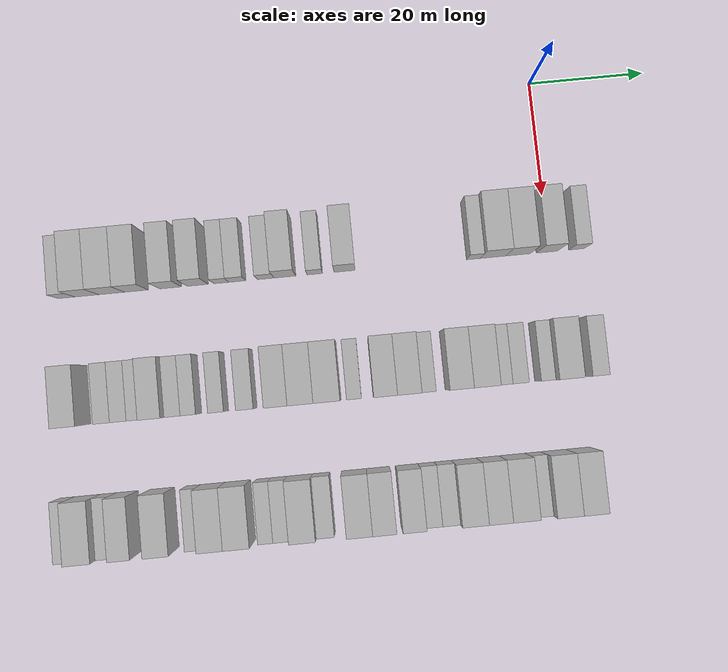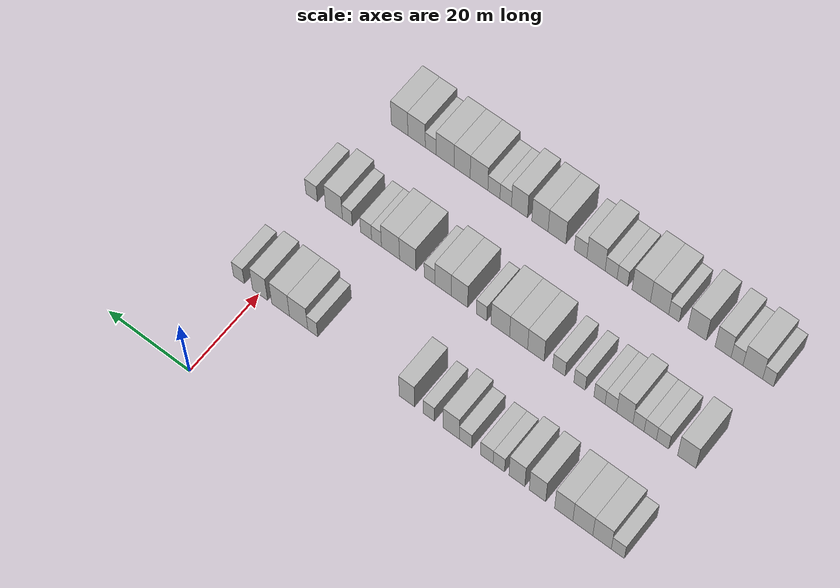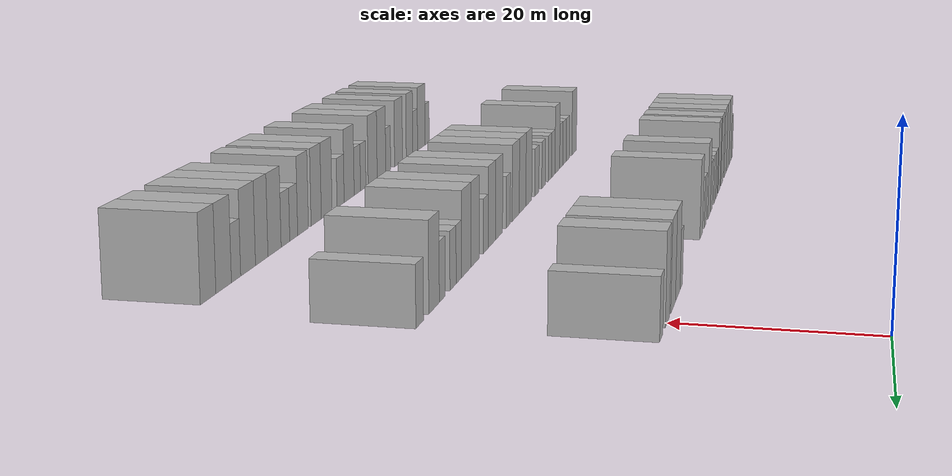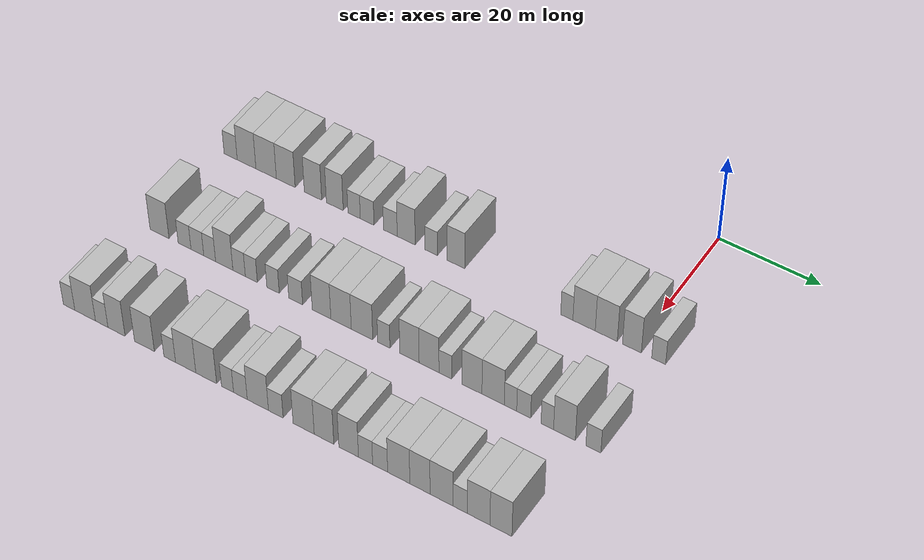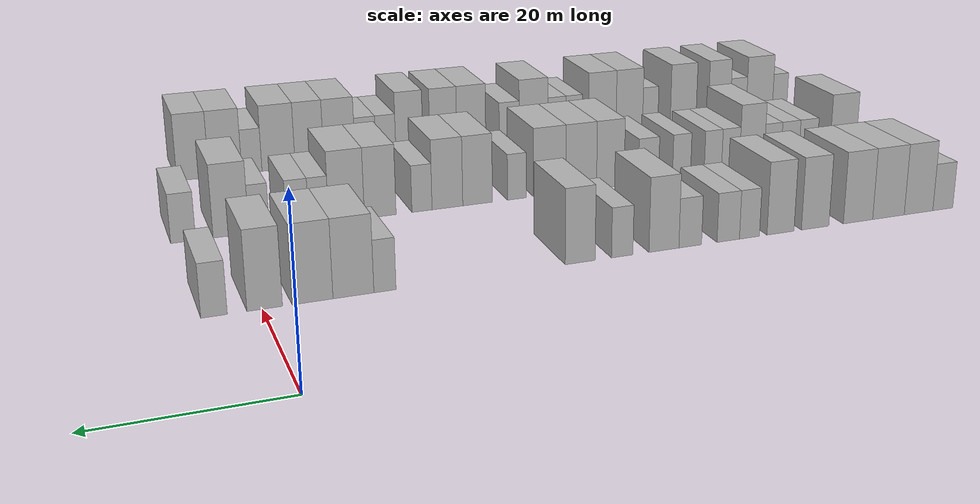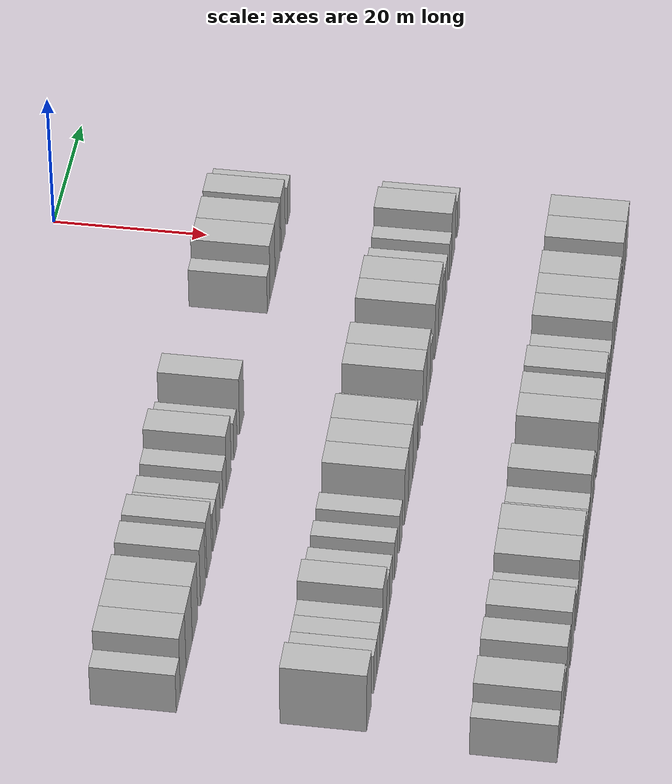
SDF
<sdf version="1.6">
 <world name="default">
  <model name="building_41">
   <static>1</static>
   <pose>25.0000 -83.7036 0 0.000000 0.000000 0.000000</pose>
   <link name="link">
    <pose>0 0 3.00 0 0 0</pose>
    <collision name="collision"><geometry><box><size>10.0000 2.9104 6.0000</size></box></geometry></collision>
    <visual name="visual">
     <cast_shadows>0</cast_shadows>
     <geometry><box><size>10.0000 2.9104 6.0000</size></box></geometry>
     <material>
      <script>
       <uri>model://HANNAS_wall/materials/scripts</uri>
       <uri>model://HANNAS_wall/materials/textures</uri>
       <name>vrc/HANNAS_wall</name>
      </script>
     </material>
    </visual>
   </link>
  </model>
  <model name="building_42">
   <static>1</static>
   <pose>25.0000 -80.1847 0 0.000000 0.000000 0.000000</pose>
   <link name="link">
    <pose>0 0 4.50 0 0 0</pose>
    <collision name="collision"><geometry><box><size>10.0000 4.1275 9.0000</size></box></geometry></collision>
    <visual name="visual">
     <cast_shadows>0</cast_shadows>
     <geometry><box><size>10.0000 4.1275 9.0000</size></box></geometry>
     <material>
      <script>
       <uri>model://HANNAS_wall/materials/scripts</uri>
       <uri>model://HANNAS_wall/materials/textures</uri>
       <name>vrc/HANNAS_wall</name>
      </script>
     </material>
    </visual>
   </link>
  </model>
  <model name="building_43">
   <static>1</static>
   <pose>25.0000 -75.8789 0 0.000000 0.000000 0.000000</pose>
   <link name="link">
    <pose>0 0 4.50 0 0 0</pose>
    <collision name="collision"><geometry><box><size>10.0000 4.4840 9.0000</size></box></geometry></collision>
    <visual name="visual">
     <cast_shadows>0</cast_shadows>
     <geometry><box><size>10.0000 4.4840 9.0000</size></box></geometry>
     <material>
      <script>
       <uri>model://HANNAS_wall/materials/scripts</uri>
       <uri>model://HANNAS_wall/materials/textures</uri>
       <name>vrc/HANNAS_wall</name>
      </script>
     </material>
    </visual>
   </link>
  </model>
  <model name="building_44">
   <static>1</static>
   <pose>25.0000 -71.5884 0 0.000000 0.000000 0.000000</pose>
   <link name="link">
    <pose>0 0 4.50 0 0 0</pose>
    <collision name="collision"><geometry><box><size>10.0000 4.0970 9.0000</size></box></geometry></collision>
    <visual name="visual">
     <cast_shadows>0</cast_shadows>
     <geometry><box><size>10.0000 4.0970 9.0000</size></box></geometry>
     <material>
      <script>
       <uri>model://HANNAS_wall/materials/scripts</uri>
       <uri>model://HANNAS_wall/materials/textures</uri>
       <name>vrc/HANNAS_wall</name>
      </script>
     </material>
    </visual>
   </link>
  </model>
  <model name="building_45">
   <static>1</static>
   <pose>25.0000 -65.6640 0 0.000000 0.000000 0.000000</pose>
   <link name="link">
    <pose>0 0 4.50 0 0 0</pose>
    <collision name="collision"><geometry><box><size>10.0000 3.7519 9.0000</size></box></geometry></collision>
    <visual name="visual">
     <cast_shadows>0</cast_shadows>
     <geometry><box><size>10.0000 3.7519 9.0000</size></box></geometry>
     <material>
      <script>
       <uri>model://HANNAS_wall/materials/scripts</uri>
       <uri>model://HANNAS_wall/materials/textures</uri>
       <name>vrc/HANNAS_wall</name>
      </script>
     </material>
    </visual>
   </link>
  </model>
  <model name="building_46">
   <static>1</static>
   <pose>25.0000 -60.9775 0 0.000000 0.000000 0.000000</pose>
   <link name="link">
    <pose>0 0 4.50 0 0 0</pose>
    <collision name="collision"><geometry><box><size>10.0000 3.6210 9.0000</size></box></geometry></collision>
    <visual name="visual">
     <cast_shadows>0</cast_shadows>
     <geometry><box><size>10.0000 3.6210 9.0000</size></box></geometry>
     <material>
      <script>
       <uri>model://HANNAS_wall/materials/scripts</uri>
       <uri>model://HANNAS_wall/materials/textures</uri>
       <name>vrc/HANNAS_wall</name>
      </script>
     </material>
    </visual>
   </link>
  </model>
  <model name="building_47">
   <static>1</static>
   <pose>25.0000 -56.8513 0 0.000000 0.000000 0.000000</pose>
   <link name="link">
    <pose>0 0 3.00 0 0 0</pose>
    <collision name="collision"><geometry><box><size>10.0000 2.6314 6.0000</size></box></geometry></collision>
    <visual name="visual">
     <cast_shadows>0</cast_shadows>
     <geometry><box><size>10.0000 2.6314 6.0000</size></box></geometry>
     <material>
      <script>
       <uri>model://HANNAS_wall/materials/scripts</uri>
       <uri>model://HANNAS_wall/materials/textures</uri>
       <name>vrc/HANNAS_wall</name>
      </script>
     </material>
    </visual>
   </link>
  </model>
  <model name="building_48">
   <static>1</static>
   <pose>25.0000 -54.0766 0 0.000000 0.000000 0.000000</pose>
   <link name="link">
    <pose>0 0 3.00 0 0 0</pose>
    <collision name="collision"><geometry><box><size>10.0000 2.9181 6.0000</size></box></geometry></collision>
    <visual name="visual">
     <cast_shadows>0</cast_shadows>
     <geometry><box><size>10.0000 2.9181 6.0000</size></box></geometry>
     <material>
      <script>
       <uri>model://HANNAS_wall/materials/scripts</uri>
       <uri>model://HANNAS_wall/materials/textures</uri>
       <name>vrc/HANNAS_wall</name>
      </script>
     </material>
    </visual>
   </link>
  </model>
  <model name="building_49">
   <static>1</static>
   <pose>25.0000 -49.1719 0 0.000000 0.000000 0.000000</pose>
   <link name="link">
    <pose>0 0 3.00 0 0 0</pose>
    <collision name="collision"><geometry><box><size>10.0000 2.8913 6.0000</size></box></geometry></collision>
    <visual name="visual">
     <cast_shadows>0</cast_shadows>
     <geometry><box><size>10.0000 2.8913 6.0000</size></box></geometry>
     <material>
      <script>
       <uri>model://HANNAS_wall/materials/scripts</uri>
       <uri>model://HANNAS_wall/materials/textures</uri>
       <name>vrc/HANNAS_wall</name>
      </script>
     </material>
    </visual>
   </link>
  </model>
  <model name="building_50">
   <static>1</static>
   <pose>25.0000 -45.8430 0 0.000000 0.000000 0.000000</pose>
   <link name="link">
    <pose>0 0 4.50 0 0 0</pose>
    <collision name="collision"><geometry><box><size>10.0000 3.7664 9.0000</size></box></geometry></collision>
    <visual name="visual">
     <cast_shadows>0</cast_shadows>
     <geometry><box><size>10.0000 3.7664 9.0000</size></box></geometry>
     <material>
      <script>
       <uri>model://HANNAS_wall/materials/scripts</uri>
       <uri>model://HANNAS_wall/materials/textures</uri>
       <name>vrc/HANNAS_wall</name>
      </script>
     </material>
    </visual>
   </link>
  </model>
  <model name="building_51">
   <static>1</static>
   <pose>25.0000 -40.6395 0 0.000000 0.000000 0.000000</pose>
   <link name="link">
    <pose>0 0 3.00 0 0 0</pose>
    <collision name="collision"><geometry><box><size>10.0000 2.6405 6.0000</size></box></geometry></collision>
    <visual name="visual">
     <cast_shadows>0</cast_shadows>
     <geometry><box><size>10.0000 2.6405 6.0000</size></box></geometry>
     <material>
      <script>
       <uri>model://HANNAS_wall/materials/scripts</uri>
       <uri>model://HANNAS_wall/materials/textures</uri>
       <name>vrc/HANNAS_wall</name>
      </script>
     </material>
    </visual>
   </link>
  </model>
  <model name="building_52">
   <static>1</static>
   <pose>25.0000 -35.5148 0 0.000000 0.000000 0.000000</pose>
   <link name="link">
    <pose>0 0 4.50 0 0 0</pose>
    <collision name="collision"><geometry><box><size>10.0000 3.6089 9.0000</size></box></geometry></collision>
    <visual name="visual">
     <cast_shadows>0</cast_shadows>
     <geometry><box><size>10.0000 3.6089 9.0000</size></box></geometry>
     <material>
      <script>
       <uri>model://HANNAS_wall/materials/scripts</uri>
       <uri>model://HANNAS_wall/materials/textures</uri>
       <name>vrc/HANNAS_wall</name>
      </script>
     </material>
    </visual>
   </link>
  </model>
  <model name="building_53">
   <static>1</static>
   <pose>25.0000 -13.0715 0 0.000000 0.000000 0.000000</pose>
   <link name="link">
    <pose>0 0 3.00 0 0 0</pose>
    <collision name="collision"><geometry><box><size>10.0000 2.4259 6.0000</size></box></geometry></collision>
    <visual name="visual">
     <cast_shadows>0</cast_shadows>
     <geometry><box><size>10.0000 2.4259 6.0000</size></box></geometry>
     <material>
      <script>
       <uri>model://HANNAS_wall/materials/scripts</uri>
       <uri>model://HANNAS_wall/materials/textures</uri>
       <name>vrc/HANNAS_wall</name>
      </script>
     </material>
    </visual>
   </link>
  </model>
  <model name="building_54">
   <static>1</static>
   <pose>25.0000 -9.6508 0 0.000000 0.000000 0.000000</pose>
   <link name="link">
    <pose>0 0 4.50 0 0 0</pose>
    <collision name="collision"><geometry><box><size>10.0000 4.4154 9.0000</size></box></geometry></collision>
    <visual name="visual">
     <cast_shadows>0</cast_shadows>
     <geometry><box><size>10.0000 4.4154 9.0000</size></box></geometry>
     <material>
      <script>
       <uri>model://HANNAS_wall/materials/scripts</uri>
       <uri>model://HANNAS_wall/materials/textures</uri>
       <name>vrc/HANNAS_wall</name>
      </script>
     </material>
    </visual>
   </link>
  </model>
  <model name="building_55">
   <static>1</static>
   <pose>25.0000 -5.2784 0 0.000000 0.000000 0.000000</pose>
   <link name="link">
    <pose>0 0 4.50 0 0 0</pose>
    <collision name="collision"><geometry><box><size>10.0000 4.3294 9.0000</size></box></geometry></collision>
    <visual name="visual">
     <cast_shadows>0</cast_shadows>
     <geometry><box><size>10.0000 4.3294 9.0000</size></box></geometry>
     <material>
      <script>
       <uri>model://HANNAS_wall/materials/scripts</uri>
       <uri>model://HANNAS_wall/materials/textures</uri>
       <name>vrc/HANNAS_wall</name>
      </script>
     </material>
    </visual>
   </link>
  </model>
  <model name="building_56">
   <static>1</static>
   <pose>25.0000 -0.2715 0 0.000000 0.000000 0.000000</pose>
   <link name="link">
    <pose>0 0 4.50 0 0 0</pose>
    <collision name="collision"><geometry><box><size>10.0000 3.6845 9.0000</size></box></geometry></collision>
    <visual name="visual">
     <cast_shadows>0</cast_shadows>
     <geometry><box><size>10.0000 3.6845 9.0000</size></box></geometry>
     <material>
      <script>
       <uri>model://HANNAS_wall/materials/scripts</uri>
       <uri>model://HANNAS_wall/materials/textures</uri>
       <name>vrc/HANNAS_wall</name>
      </script>
     </material>
    </visual>
   </link>
  </model>
  <model name="building_57">
   <static>1</static>
   <pose>25.0000 4.9167 0 0.000000 0.000000 0.000000</pose>
   <link name="link">
    <pose>0 0 3.00 0 0 0</pose>
    <collision name="collision"><geometry><box><size>10.0000 2.6919 6.0000</size></box></geometry></collision>
    <visual name="visual">
     <cast_shadows>0</cast_shadows>
     <geometry><box><size>10.0000 2.6919 6.0000</size></box></geometry>
     <material>
      <script>
       <uri>model://HANNAS_wall/materials/scripts</uri>
       <uri>model://HANNAS_wall/materials/textures</uri>
       <name>vrc/HANNAS_wall</name>
      </script>
     </material>
    </visual>
   </link>
  </model>
  <model name="building_163">
   <static>1</static>
   <pose>47.0000 -83.1682 0 0.000000 0.000000 0.000000</pose>
   <link name="link">
    <pose>0 0 4.50 0 0 0</pose>
    <collision name="collision"><geometry><box><size>10.0000 4.1408 9.0000</size></box></geometry></collision>
    <visual name="visual">
     <cast_shadows>0</cast_shadows>
     <geometry><box><size>10.0000 4.1408 9.0000</size></box></geometry>
     <material>
      <script>
       <uri>model://HANNAS_wall/materials/scripts</uri>
       <uri>model://HANNAS_wall/materials/textures</uri>
       <name>vrc/HANNAS_wall</name>
      </script>
     </material>
    </visual>
   </link>
  </model>
  <model name="building_164">
   <static>1</static>
   <pose>47.0000 -77.7043 0 0.000000 0.000000 0.000000</pose>
   <link name="link">
    <pose>0 0 3.00 0 0 0</pose>
    <collision name="collision"><geometry><box><size>10.0000 2.7871 6.0000</size></box></geometry></collision>
    <visual name="visual">
     <cast_shadows>0</cast_shadows>
     <geometry><box><size>10.0000 2.7871 6.0000</size></box></geometry>
     <material>
      <script>
       <uri>model://HANNAS_wall/materials/scripts</uri>
       <uri>model://HANNAS_wall/materials/textures</uri>
       <name>vrc/HANNAS_wall</name>
      </script>
     </material>
    </visual>
   </link>
  </model>
  <model name="building_165">
   <static>1</static>
   <pose>47.0000 -74.9298 0 0.000000 0.000000 0.000000</pose>
   <link name="link">
    <pose>0 0 3.00 0 0 0</pose>
    <collision name="collision"><geometry><box><size>10.0000 2.7617 6.0000</size></box></geometry></collision>
    <visual name="visual">
     <cast_shadows>0</cast_shadows>
     <geometry><box><size>10.0000 2.7617 6.0000</size></box></geometry>
     <material>
      <script>
       <uri>model://HANNAS_wall/materials/scripts</uri>
       <uri>model://HANNAS_wall/materials/textures</uri>
       <name>vrc/HANNAS_wall</name>
      </script>
     </material>
    </visual>
   </link>
  </model>
  <model name="building_166">
   <static>1</static>
   <pose>47.0000 -72.2760 0 0.000000 0.000000 0.000000</pose>
   <link name="link">
    <pose>0 0 3.00 0 0 0</pose>
    <collision name="collision"><geometry><box><size>10.0000 2.5460 6.0000</size></box></geometry></collision>
    <visual name="visual">
     <cast_shadows>0</cast_shadows>
     <geometry><box><size>10.0000 2.5460 6.0000</size></box></geometry>
     <material>
      <script>
       <uri>model://HANNAS_wall/materials/scripts</uri>
       <uri>model://HANNAS_wall/materials/textures</uri>
       <name>vrc/HANNAS_wall</name>
      </script>
     </material>
    </visual>
   </link>
  </model>
  <model name="building_167">
   <static>1</static>
   <pose>47.0000 -69.1542 0 0.000000 0.000000 0.000000</pose>
   <link name="link">
    <pose>0 0 4.50 0 0 0</pose>
    <collision name="collision"><geometry><box><size>10.0000 3.6977 9.0000</size></box></geometry></collision>
    <visual name="visual">
     <cast_shadows>0</cast_shadows>
     <geometry><box><size>10.0000 3.6977 9.0000</size></box></geometry>
     <material>
      <script>
       <uri>model://HANNAS_wall/materials/scripts</uri>
       <uri>model://HANNAS_wall/materials/textures</uri>
       <name>vrc/HANNAS_wall</name>
      </script>
     </material>
    </visual>
   </link>
  </model>
  <model name="building_168">
   <static>1</static>
   <pose>47.0000 -65.9804 0 0.000000 0.000000 0.000000</pose>
   <link name="link">
    <pose>0 0 3.00 0 0 0</pose>
    <collision name="collision"><geometry><box><size>10.0000 2.6498 6.0000</size></box></geometry></collision>
    <visual name="visual">
     <cast_shadows>0</cast_shadows>
     <geometry><box><size>10.0000 2.6498 6.0000</size></box></geometry>
     <material>
      <script>
       <uri>model://HANNAS_wall/materials/scripts</uri>
       <uri>model://HANNAS_wall/materials/textures</uri>
       <name>vrc/HANNAS_wall</name>
      </script>
     </material>
    </visual>
   </link>
  </model>
  <model name="building_169">
   <static>1</static>
   <pose>47.0000 -63.3798 0 0.000000 0.000000 0.000000</pose>
   <link name="link">
    <pose>0 0 3.00 0 0 0</pose>
    <collision name="collision"><geometry><box><size>10.0000 2.5513 6.0000</size></box></geometry></collision>
    <visual name="visual">
     <cast_shadows>0</cast_shadows>
     <geometry><box><size>10.0000 2.5513 6.0000</size></box></geometry>
     <material>
      <script>
       <uri>model://HANNAS_wall/materials/scripts</uri>
       <uri>model://HANNAS_wall/materials/textures</uri>
       <name>vrc/HANNAS_wall</name>
      </script>
     </material>
    </visual>
   </link>
  </model>
  <model name="building_170">
   <static>1</static>
   <pose>47.0000 -58.7973 0 0.000000 0.000000 0.000000</pose>
   <link name="link">
    <pose>0 0 3.00 0 0 0</pose>
    <collision name="collision"><geometry><box><size>10.0000 2.6137 6.0000</size></box></geometry></collision>
    <visual name="visual">
     <cast_shadows>0</cast_shadows>
     <geometry><box><size>10.0000 2.6137 6.0000</size></box></geometry>
     <material>
      <script>
       <uri>model://HANNAS_wall/materials/scripts</uri>
       <uri>model://HANNAS_wall/materials/textures</uri>
       <name>vrc/HANNAS_wall</name>
      </script>
     </material>
    </visual>
   </link>
  </model>
  <model name="building_171">
   <static>1</static>
   <pose>47.0000 -54.0409 0 0.000000 0.000000 0.000000</pose>
   <link name="link">
    <pose>0 0 3.00 0 0 0</pose>
    <collision name="collision"><geometry><box><size>10.0000 2.8991 6.0000</size></box></geometry></collision>
    <visual name="visual">
     <cast_shadows>0</cast_shadows>
     <geometry><box><size>10.0000 2.8991 6.0000</size></box></geometry>
     <material>
      <script>
       <uri>model://HANNAS_wall/materials/scripts</uri>
       <uri>model://HANNAS_wall/materials/textures</uri>
       <name>vrc/HANNAS_wall</name>
      </script>
     </material>
    </visual>
   </link>
  </model>
  <model name="building_172">
   <static>1</static>
   <pose>47.0000 -48.6638 0 0.000000 0.000000 0.000000</pose>
   <link name="link">
    <pose>0 0 4.50 0 0 0</pose>
    <collision name="collision"><geometry><box><size>10.0000 3.8551 9.0000</size></box></geometry></collision>
    <visual name="visual">
     <cast_shadows>0</cast_shadows>
     <geometry><box><size>10.0000 3.8551 9.0000</size></box></geometry>
     <material>
      <script>
       <uri>model://HANNAS_wall/materials/scripts</uri>
       <uri>model://HANNAS_wall/materials/textures</uri>
       <name>vrc/HANNAS_wall</name>
      </script>
     </material>
    </visual>
   </link>
  </model>
  <model name="building_173">
   <static>1</static>
   <pose>47.0000 -44.6332 0 0.000000 0.000000 0.000000</pose>
   <link name="link">
    <pose>0 0 4.50 0 0 0</pose>
    <collision name="collision"><geometry><box><size>10.0000 4.2063 9.0000</size></box></geometry></collision>
    <visual name="visual">
     <cast_shadows>0</cast_shadows>
     <geometry><box><size>10.0000 4.2063 9.0000</size></box></geometry>
     <material>
      <script>
       <uri>model://HANNAS_wall/materials/scripts</uri>
       <uri>model://HANNAS_wall/materials/textures</uri>
       <name>vrc/HANNAS_wall</name>
      </script>
     </material>
    </visual>
   </link>
  </model>
  <model name="building_174">
   <static>1</static>
   <pose>47.0000 -40.3350 0 0.000000 0.000000 0.000000</pose>
   <link name="link">
    <pose>0 0 4.50 0 0 0</pose>
    <collision name="collision"><geometry><box><size>10.0000 4.3901 9.0000</size></box></geometry></collision>
    <visual name="visual">
     <cast_shadows>0</cast_shadows>
     <geometry><box><size>10.0000 4.3901 9.0000</size></box></geometry>
     <material>
      <script>
       <uri>model://HANNAS_wall/materials/scripts</uri>
       <uri>model://HANNAS_wall/materials/textures</uri>
       <name>vrc/HANNAS_wall</name>
      </script>
     </material>
    </visual>
   </link>
  </model>
  <model name="building_175">
   <static>1</static>
   <pose>47.0000 -35.9000 0 0.000000 0.000000 0.000000</pose>
   <link name="link">
    <pose>0 0 3.00 0 0 0</pose>
    <collision name="collision"><geometry><box><size>10.0000 2.4799 6.0000</size></box></geometry></collision>
    <visual name="visual">
     <cast_shadows>0</cast_shadows>
     <geometry><box><size>10.0000 2.4799 6.0000</size></box></geometry>
     <material>
      <script>
       <uri>model://HANNAS_wall/materials/scripts</uri>
       <uri>model://HANNAS_wall/materials/textures</uri>
       <name>vrc/HANNAS_wall</name>
      </script>
     </material>
    </visual>
   </link>
  </model>
  <model name="building_176">
   <static>1</static>
   <pose>47.0000 -30.7206 0 0.000000 0.000000 0.000000</pose>
   <link name="link">
    <pose>0 0 4.50 0 0 0</pose>
    <collision name="collision"><geometry><box><size>10.0000 3.8787 9.0000</size></box></geometry></collision>
    <visual name="visual">
     <cast_shadows>0</cast_shadows>
     <geometry><box><size>10.0000 3.8787 9.0000</size></box></geometry>
     <material>
      <script>
       <uri>model://HANNAS_wall/materials/scripts</uri>
       <uri>model://HANNAS_wall/materials/textures</uri>
       <name>vrc/HANNAS_wall</name>
      </script>
     </material>
    </visual>
   </link>
  </model>
  <model name="building_177">
   <static>1</static>
   <pose>47.0000 -26.7974 0 0.000000 0.000000 0.000000</pose>
   <link name="link">
    <pose>0 0 4.50 0 0 0</pose>
    <collision name="collision"><geometry><box><size>10.0000 3.9677 9.0000</size></box></geometry></collision>
    <visual name="visual">
     <cast_shadows>0</cast_shadows>
     <geometry><box><size>10.0000 3.9677 9.0000</size></box></geometry>
     <material>
      <script>
       <uri>model://HANNAS_wall/materials/scripts</uri>
       <uri>model://HANNAS_wall/materials/textures</uri>
       <name>vrc/HANNAS_wall</name>
      </script>
     </material>
    </visual>
   </link>
  </model>
  <model name="building_178">
   <static>1</static>
   <pose>47.0000 -23.5356 0 0.000000 0.000000 0.000000</pose>
   <link name="link">
    <pose>0 0 3.00 0 0 0</pose>
    <collision name="collision"><geometry><box><size>10.0000 2.5561 6.0000</size></box></geometry></collision>
    <visual name="visual">
     <cast_shadows>0</cast_shadows>
     <geometry><box><size>10.0000 2.5561 6.0000</size></box></geometry>
     <material>
      <script>
       <uri>model://HANNAS_wall/materials/scripts</uri>
       <uri>model://HANNAS_wall/materials/textures</uri>
       <name>vrc/HANNAS_wall</name>
      </script>
     </material>
    </visual>
   </link>
  </model>
  <model name="building_179">
   <static>1</static>
   <pose>47.0000 -18.2836 0 0.000000 0.000000 0.000000</pose>
   <link name="link">
    <pose>0 0 4.50 0 0 0</pose>
    <collision name="collision"><geometry><box><size>10.0000 3.9479 9.0000</size></box></geometry></collision>
    <visual name="visual">
     <cast_shadows>0</cast_shadows>
     <geometry><box><size>10.0000 3.9479 9.0000</size></box></geometry>
     <material>
      <script>
       <uri>model://HANNAS_wall/materials/scripts</uri>
       <uri>model://HANNAS_wall/materials/textures</uri>
       <name>vrc/HANNAS_wall</name>
      </script>
     </material>
    </visual>
   </link>
  </model>
  <model name="building_180">
   <static>1</static>
   <pose>47.0000 -14.1208 0 0.000000 0.000000 0.000000</pose>
   <link name="link">
    <pose>0 0 4.50 0 0 0</pose>
    <collision name="collision"><geometry><box><size>10.0000 4.3777 9.0000</size></box></geometry></collision>
    <visual name="visual">
     <cast_shadows>0</cast_shadows>
     <geometry><box><size>10.0000 4.3777 9.0000</size></box></geometry>
     <material>
      <script>
       <uri>model://HANNAS_wall/materials/scripts</uri>
       <uri>model://HANNAS_wall/materials/textures</uri>
       <name>vrc/HANNAS_wall</name>
      </script>
     </material>
    </visual>
   </link>
  </model>
  <model name="building_181">
   <static>1</static>
   <pose>47.0000 -10.7243 0 0.000000 0.000000 0.000000</pose>
   <link name="link">
    <pose>0 0 3.00 0 0 0</pose>
    <collision name="collision"><geometry><box><size>10.0000 2.4152 6.0000</size></box></geometry></collision>
    <visual name="visual">
     <cast_shadows>0</cast_shadows>
     <geometry><box><size>10.0000 2.4152 6.0000</size></box></geometry>
     <material>
      <script>
       <uri>model://HANNAS_wall/materials/scripts</uri>
       <uri>model://HANNAS_wall/materials/textures</uri>
       <name>vrc/HANNAS_wall</name>
      </script>
     </material>
    </visual>
   </link>
  </model>
  <model name="building_182">
   <static>1</static>
   <pose>47.0000 -8.1660 0 0.000000 0.000000 0.000000</pose>
   <link name="link">
    <pose>0 0 3.00 0 0 0</pose>
    <collision name="collision"><geometry><box><size>10.0000 2.7015 6.0000</size></box></geometry></collision>
    <visual name="visual">
     <cast_shadows>0</cast_shadows>
     <geometry><box><size>10.0000 2.7015 6.0000</size></box></geometry>
     <material>
      <script>
       <uri>model://HANNAS_wall/materials/scripts</uri>
       <uri>model://HANNAS_wall/materials/textures</uri>
       <name>vrc/HANNAS_wall</name>
      </script>
     </material>
    </visual>
   </link>
  </model>
  <model name="building_183">
   <static>1</static>
   <pose>47.0000 -3.6055 0 0.000000 0.000000 0.000000</pose>
   <link name="link">
    <pose>0 0 3.00 0 0 0</pose>
    <collision name="collision"><geometry><box><size>10.0000 2.4195 6.0000</size></box></geometry></collision>
    <visual name="visual">
     <cast_shadows>0</cast_shadows>
     <geometry><box><size>10.0000 2.4195 6.0000</size></box></geometry>
     <material>
      <script>
       <uri>model://HANNAS_wall/materials/scripts</uri>
       <uri>model://HANNAS_wall/materials/textures</uri>
       <name>vrc/HANNAS_wall</name>
      </script>
     </material>
    </visual>
   </link>
  </model>
  <model name="building_184">
   <static>1</static>
   <pose>47.0000 -0.3115 0 0.000000 0.000000 0.000000</pose>
   <link name="link">
    <pose>0 0 4.50 0 0 0</pose>
    <collision name="collision"><geometry><box><size>10.0000 4.1685 9.0000</size></box></geometry></collision>
    <visual name="visual">
     <cast_shadows>0</cast_shadows>
     <geometry><box><size>10.0000 4.1685 9.0000</size></box></geometry>
     <material>
      <script>
       <uri>model://HANNAS_wall/materials/scripts</uri>
       <uri>model://HANNAS_wall/materials/textures</uri>
       <name>vrc/HANNAS_wall</name>
      </script>
     </material>
    </visual>
   </link>
  </model>
  <model name="building_185">
   <static>1</static>
   <pose>47.0000 5.1976 0 0.000000 0.000000 0.000000</pose>
   <link name="link">
    <pose>0 0 3.00 0 0 0</pose>
    <collision name="collision"><geometry><box><size>10.0000 2.8498 6.0000</size></box></geometry></collision>
    <visual name="visual">
     <cast_shadows>0</cast_shadows>
     <geometry><box><size>10.0000 2.8498 6.0000</size></box></geometry>
     <material>
      <script>
       <uri>model://HANNAS_wall/materials/scripts</uri>
       <uri>model://HANNAS_wall/materials/textures</uri>
       <name>vrc/HANNAS_wall</name>
      </script>
     </material>
    </visual>
   </link>
  </model>
  <model name="building_292">
   <static>1</static>
   <pose>69.0000 -85.9227 0 0.000000 0.000000 0.000000</pose>
   <link name="link">
    <pose>0 0 3.00 0 0 0</pose>
    <collision name="collision"><geometry><box><size>10.0000 2.4781 6.0000</size></box></geometry></collision>
    <visual name="visual">
     <cast_shadows>0</cast_shadows>
     <geometry><box><size>10.0000 2.4781 6.0000</size></box></geometry>
     <material>
      <script>
       <uri>model://HANNAS_wall/materials/scripts</uri>
       <uri>model://HANNAS_wall/materials/textures</uri>
       <name>vrc/HANNAS_wall</name>
      </script>
     </material>
    </visual>
   </link>
  </model>
  <model name="building_293">
   <static>1</static>
   <pose>69.0000 -82.4627 0 0.000000 0.000000 0.000000</pose>
   <link name="link">
    <pose>0 0 4.50 0 0 0</pose>
    <collision name="collision"><geometry><box><size>10.0000 4.4420 9.0000</size></box></geometry></collision>
    <visual name="visual">
     <cast_shadows>0</cast_shadows>
     <geometry><box><size>10.0000 4.4420 9.0000</size></box></geometry>
     <material>
      <script>
       <uri>model://HANNAS_wall/materials/scripts</uri>
       <uri>model://HANNAS_wall/materials/textures</uri>
       <name>vrc/HANNAS_wall</name>
      </script>
     </material>
    </visual>
   </link>
  </model>
  <model name="building_294">
   <static>1</static>
   <pose>69.0000 -78.8973 0 0.000000 0.000000 0.000000</pose>
   <link name="link">
    <pose>0 0 3.00 0 0 0</pose>
    <collision name="collision"><geometry><box><size>10.0000 2.6887 6.0000</size></box></geometry></collision>
    <visual name="visual">
     <cast_shadows>0</cast_shadows>
     <geometry><box><size>10.0000 2.6887 6.0000</size></box></geometry>
     <material>
      <script>
       <uri>model://HANNAS_wall/materials/scripts</uri>
       <uri>model://HANNAS_wall/materials/textures</uri>
       <name>vrc/HANNAS_wall</name>
      </script>
     </material>
    </visual>
   </link>
  </model>
  <model name="building_295">
   <static>1</static>
   <pose>69.0000 -75.7292 0 0.000000 0.000000 0.000000</pose>
   <link name="link">
    <pose>0 0 4.50 0 0 0</pose>
    <collision name="collision"><geometry><box><size>10.0000 3.6476 9.0000</size></box></geometry></collision>
    <visual name="visual">
     <cast_shadows>0</cast_shadows>
     <geometry><box><size>10.0000 3.6476 9.0000</size></box></geometry>
     <material>
      <script>
       <uri>model://HANNAS_wall/materials/scripts</uri>
       <uri>model://HANNAS_wall/materials/textures</uri>
       <name>vrc/HANNAS_wall</name>
      </script>
     </material>
    </visual>
   </link>
  </model>
  <model name="building_296">
   <static>1</static>
   <pose>69.0000 -69.8061 0 0.000000 0.000000 0.000000</pose>
   <link name="link">
    <pose>0 0 4.50 0 0 0</pose>
    <collision name="collision"><geometry><box><size>10.0000 4.1986 9.0000</size></box></geometry></collision>
    <visual name="visual">
     <cast_shadows>0</cast_shadows>
     <geometry><box><size>10.0000 4.1986 9.0000</size></box></geometry>
     <material>
      <script>
       <uri>model://HANNAS_wall/materials/scripts</uri>
       <uri>model://HANNAS_wall/materials/textures</uri>
       <name>vrc/HANNAS_wall</name>
      </script>
     </material>
    </visual>
   </link>
  </model>
  <model name="building_297">
   <static>1</static>
   <pose>69.0000 -64.4861 0 0.000000 0.000000 0.000000</pose>
   <link name="link">
    <pose>0 0 3.00 0 0 0</pose>
    <collision name="collision"><geometry><box><size>10.0000 2.4413 6.0000</size></box></geometry></collision>
    <visual name="visual">
     <cast_shadows>0</cast_shadows>
     <geometry><box><size>10.0000 2.4413 6.0000</size></box></geometry>
     <material>
      <script>
       <uri>model://HANNAS_wall/materials/scripts</uri>
       <uri>model://HANNAS_wall/materials/textures</uri>
       <name>vrc/HANNAS_wall</name>
      </script>
     </material>
    </visual>
   </link>
  </model>
  <model name="building_298">
   <static>1</static>
   <pose>69.0000 -61.1536 0 0.000000 0.000000 0.000000</pose>
   <link name="link">
    <pose>0 0 4.50 0 0 0</pose>
    <collision name="collision"><geometry><box><size>10.0000 4.2236 9.0000</size></box></geometry></collision>
    <visual name="visual">
     <cast_shadows>0</cast_shadows>
     <geometry><box><size>10.0000 4.2236 9.0000</size></box></geometry>
     <material>
      <script>
       <uri>model://HANNAS_wall/materials/scripts</uri>
       <uri>model://HANNAS_wall/materials/textures</uri>
       <name>vrc/HANNAS_wall</name>
      </script>
     </material>
    </visual>
   </link>
  </model>
  <model name="building_299">
   <static>1</static>
   <pose>69.0000 -56.8923 0 0.000000 0.000000 0.000000</pose>
   <link name="link">
    <pose>0 0 4.50 0 0 0</pose>
    <collision name="collision"><geometry><box><size>10.0000 4.2990 9.0000</size></box></geometry></collision>
    <visual name="visual">
     <cast_shadows>0</cast_shadows>
     <geometry><box><size>10.0000 4.2990 9.0000</size></box></geometry>
     <material>
      <script>
       <uri>model://HANNAS_wall/materials/scripts</uri>
       <uri>model://HANNAS_wall/materials/textures</uri>
       <name>vrc/HANNAS_wall</name>
      </script>
     </material>
    </visual>
   </link>
  </model>
  <model name="building_300">
   <static>1</static>
   <pose>69.0000 -52.5038 0 0.000000 0.000000 0.000000</pose>
   <link name="link">
    <pose>0 0 3.00 0 0 0</pose>
    <collision name="collision"><geometry><box><size>10.0000 2.4782 6.0000</size></box></geometry></collision>
    <visual name="visual">
     <cast_shadows>0</cast_shadows>
     <geometry><box><size>10.0000 2.4782 6.0000</size></box></geometry>
     <material>
      <script>
       <uri>model://HANNAS_wall/materials/scripts</uri>
       <uri>model://HANNAS_wall/materials/textures</uri>
       <name>vrc/HANNAS_wall</name>
      </script>
     </material>
    </visual>
   </link>
  </model>
  <model name="building_301">
   <static>1</static>
   <pose>69.0000 -49.8663 0 0.000000 0.000000 0.000000</pose>
   <link name="link">
    <pose>0 0 3.00 0 0 0</pose>
    <collision name="collision"><geometry><box><size>10.0000 2.7967 6.0000</size></box></geometry></collision>
    <visual name="visual">
     <cast_shadows>0</cast_shadows>
     <geometry><box><size>10.0000 2.7967 6.0000</size></box></geometry>
     <material>
      <script>
       <uri>model://HANNAS_wall/materials/scripts</uri>
       <uri>model://HANNAS_wall/materials/textures</uri>
       <name>vrc/HANNAS_wall</name>
      </script>
     </material>
    </visual>
   </link>
  </model>
  <model name="building_302">
   <static>1</static>
   <pose>69.0000 -46.3128 0 0.000000 0.000000 0.000000</pose>
   <link name="link">
    <pose>0 0 4.50 0 0 0</pose>
    <collision name="collision"><geometry><box><size>10.0000 4.3103 9.0000</size></box></geometry></collision>
    <visual name="visual">
     <cast_shadows>0</cast_shadows>
     <geometry><box><size>10.0000 4.3103 9.0000</size></box></geometry>
     <material>
      <script>
       <uri>model://HANNAS_wall/materials/scripts</uri>
       <uri>model://HANNAS_wall/materials/textures</uri>
       <name>vrc/HANNAS_wall</name>
      </script>
     </material>
    </visual>
   </link>
  </model>
  <model name="building_303">
   <static>1</static>
   <pose>69.0000 -42.6739 0 0.000000 0.000000 0.000000</pose>
   <link name="link">
    <pose>0 0 3.00 0 0 0</pose>
    <collision name="collision"><geometry><box><size>10.0000 2.9676 6.0000</size></box></geometry></collision>
    <visual name="visual">
     <cast_shadows>0</cast_shadows>
     <geometry><box><size>10.0000 2.9676 6.0000</size></box></geometry>
     <material>
      <script>
       <uri>model://HANNAS_wall/materials/scripts</uri>
       <uri>model://HANNAS_wall/materials/textures</uri>
       <name>vrc/HANNAS_wall</name>
      </script>
     </material>
    </visual>
   </link>
  </model>
  <model name="building_304">
   <static>1</static>
   <pose>69.0000 -37.0755 0 0.000000 0.000000 0.000000</pose>
   <link name="link">
    <pose>0 0 4.50 0 0 0</pose>
    <collision name="collision"><geometry><box><size>10.0000 4.2292 9.0000</size></box></geometry></collision>
    <visual name="visual">
     <cast_shadows>0</cast_shadows>
     <geometry><box><size>10.0000 4.2292 9.0000</size></box></geometry>
     <material>
      <script>
       <uri>model://HANNAS_wall/materials/scripts</uri>
       <uri>model://HANNAS_wall/materials/textures</uri>
       <name>vrc/HANNAS_wall</name>
      </script>
     </material>
    </visual>
   </link>
  </model>
  <model name="building_305">
   <static>1</static>
   <pose>69.0000 -33.0144 0 0.000000 0.000000 0.000000</pose>
   <link name="link">
    <pose>0 0 4.50 0 0 0</pose>
    <collision name="collision"><geometry><box><size>10.0000 3.8929 9.0000</size></box></geometry></collision>
    <visual name="visual">
     <cast_shadows>0</cast_shadows>
     <geometry><box><size>10.0000 3.8929 9.0000</size></box></geometry>
     <material>
      <script>
       <uri>model://HANNAS_wall/materials/scripts</uri>
       <uri>model://HANNAS_wall/materials/textures</uri>
       <name>vrc/HANNAS_wall</name>
      </script>
     </material>
    </visual>
   </link>
  </model>
  <model name="building_306">
   <static>1</static>
   <pose>69.0000 -28.1370 0 0.000000 0.000000 0.000000</pose>
   <link name="link">
    <pose>0 0 4.50 0 0 0</pose>
    <collision name="collision"><geometry><box><size>10.0000 3.8618 9.0000</size></box></geometry></collision>
    <visual name="visual">
     <cast_shadows>0</cast_shadows>
     <geometry><box><size>10.0000 3.8618 9.0000</size></box></geometry>
     <material>
      <script>
       <uri>model://HANNAS_wall/materials/scripts</uri>
       <uri>model://HANNAS_wall/materials/textures</uri>
       <name>vrc/HANNAS_wall</name>
      </script>
     </material>
    </visual>
   </link>
  </model>
  <model name="building_307">
   <static>1</static>
   <pose>69.0000 -24.8189 0 0.000000 0.000000 0.000000</pose>
   <link name="link">
    <pose>0 0 3.00 0 0 0</pose>
    <collision name="collision"><geometry><box><size>10.0000 2.7743 6.0000</size></box></geometry></collision>
    <visual name="visual">
     <cast_shadows>0</cast_shadows>
     <geometry><box><size>10.0000 2.7743 6.0000</size></box></geometry>
     <material>
      <script>
       <uri>model://HANNAS_wall/materials/scripts</uri>
       <uri>model://HANNAS_wall/materials/textures</uri>
       <name>vrc/HANNAS_wall</name>
      </script>
     </material>
    </visual>
   </link>
  </model>
  <model name="building_308">
   <static>1</static>
   <pose>69.0000 -21.9688 0 0.000000 0.000000 0.000000</pose>
   <link name="link">
    <pose>0 0 3.00 0 0 0</pose>
    <collision name="collision"><geometry><box><size>10.0000 2.9260 6.0000</size></box></geometry></collision>
    <visual name="visual">
     <cast_shadows>0</cast_shadows>
     <geometry><box><size>10.0000 2.9260 6.0000</size></box></geometry>
     <material>
      <script>
       <uri>model://HANNAS_wall/materials/scripts</uri>
       <uri>model://HANNAS_wall/materials/textures</uri>
       <name>vrc/HANNAS_wall</name>
      </script>
     </material>
    </visual>
   </link>
  </model>
  <model name="building_309">
   <static>1</static>
   <pose>69.0000 -18.3553 0 0.000000 0.000000 0.000000</pose>
   <link name="link">
    <pose>0 0 4.50 0 0 0</pose>
    <collision name="collision"><geometry><box><size>10.0000 4.3009 9.0000</size></box></geometry></collision>
    <visual name="visual">
     <cast_shadows>0</cast_shadows>
     <geometry><box><size>10.0000 4.3009 9.0000</size></box></geometry>
     <material>
      <script>
       <uri>model://HANNAS_wall/materials/scripts</uri>
       <uri>model://HANNAS_wall/materials/textures</uri>
       <name>vrc/HANNAS_wall</name>
      </script>
     </material>
    </visual>
   </link>
  </model>
  <model name="building_310">
   <static>1</static>
   <pose>69.0000 -14.2570 0 0.000000 0.000000 0.000000</pose>
   <link name="link">
    <pose>0 0 4.50 0 0 0</pose>
    <collision name="collision"><geometry><box><size>10.0000 3.8956 9.0000</size></box></geometry></collision>
    <visual name="visual">
     <cast_shadows>0</cast_shadows>
     <geometry><box><size>10.0000 3.8956 9.0000</size></box></geometry>
     <material>
      <script>
       <uri>model://HANNAS_wall/materials/scripts</uri>
       <uri>model://HANNAS_wall/materials/textures</uri>
       <name>vrc/HANNAS_wall</name>
      </script>
     </material>
    </visual>
   </link>
  </model>
  <model name="building_311">
   <static>1</static>
   <pose>69.0000 -10.0921 0 0.000000 0.000000 0.000000</pose>
   <link name="link">
    <pose>0 0 4.50 0 0 0</pose>
    <collision name="collision"><geometry><box><size>10.0000 4.4342 9.0000</size></box></geometry></collision>
    <visual name="visual">
     <cast_shadows>0</cast_shadows>
     <geometry><box><size>10.0000 4.4342 9.0000</size></box></geometry>
     <material>
      <script>
       <uri>model://HANNAS_wall/materials/scripts</uri>
       <uri>model://HANNAS_wall/materials/textures</uri>
       <name>vrc/HANNAS_wall</name>
      </script>
     </material>
    </visual>
   </link>
  </model>
  <model name="building_312">
   <static>1</static>
   <pose>69.0000 -6.5478 0 0.000000 0.000000 0.000000</pose>
   <link name="link">
    <pose>0 0 3.00 0 0 0</pose>
    <collision name="collision"><geometry><box><size>10.0000 2.6544 6.0000</size></box></geometry></collision>
    <visual name="visual">
     <cast_shadows>0</cast_shadows>
     <geometry><box><size>10.0000 2.6544 6.0000</size></box></geometry>
     <material>
      <script>
       <uri>model://HANNAS_wall/materials/scripts</uri>
       <uri>model://HANNAS_wall/materials/textures</uri>
       <name>vrc/HANNAS_wall</name>
      </script>
     </material>
    </visual>
   </link>
  </model>
  <model name="building_313">
   <static>1</static>
   <pose>69.0000 -3.0740 0 0.000000 0.000000 0.000000</pose>
   <link name="link">
    <pose>0 0 4.50 0 0 0</pose>
    <collision name="collision"><geometry><box><size>10.0000 4.2933 9.0000</size></box></geometry></collision>
    <visual name="visual">
     <cast_shadows>0</cast_shadows>
     <geometry><box><size>10.0000 4.2933 9.0000</size></box></geometry>
     <material>
      <script>
       <uri>model://HANNAS_wall/materials/scripts</uri>
       <uri>model://HANNAS_wall/materials/textures</uri>
       <name>vrc/HANNAS_wall</name>
      </script>
     </material>
    </visual>
   </link>
  </model>
  <model name="building_314">
   <static>1</static>
   <pose>69.0000 1.1346 0 0.000000 0.000000 0.000000</pose>
   <link name="link">
    <pose>0 0 4.50 0 0 0</pose>
    <collision name="collision"><geometry><box><size>10.0000 4.1239 9.0000</size></box></geometry></collision>
    <visual name="visual">
     <cast_shadows>0</cast_shadows>
     <geometry><box><size>10.0000 4.1239 9.0000</size></box></geometry>
     <material>
      <script>
       <uri>model://HANNAS_wall/materials/scripts</uri>
       <uri>model://HANNAS_wall/materials/textures</uri>
       <name>vrc/HANNAS_wall</name>
      </script>
     </material>
    </visual>
   </link>
  </model>
 </world>
</sdf>
